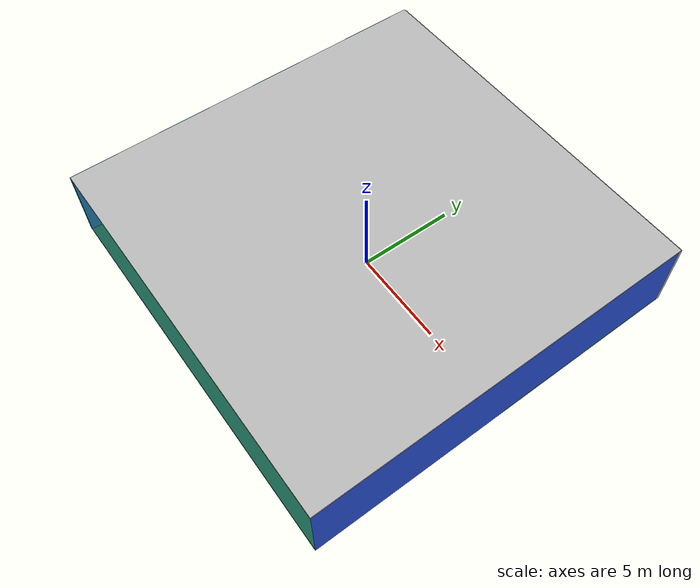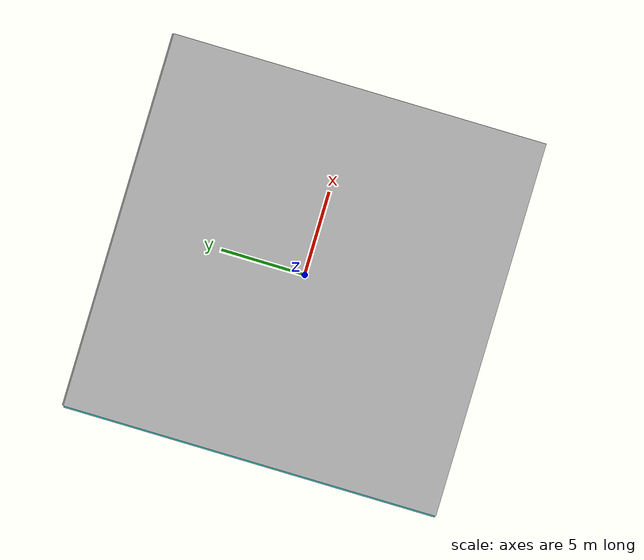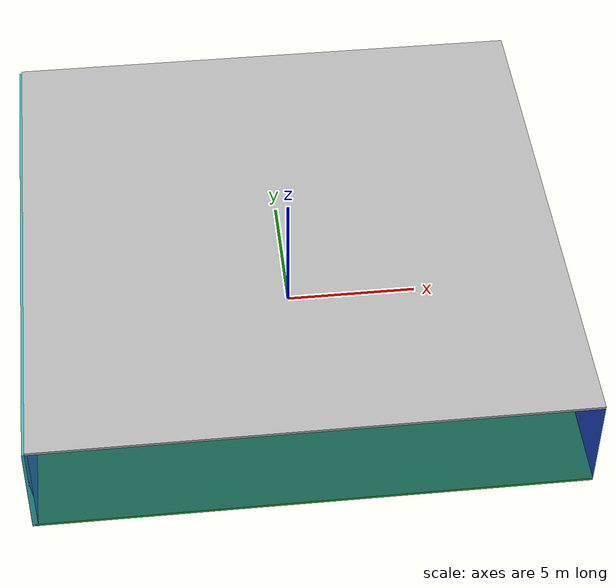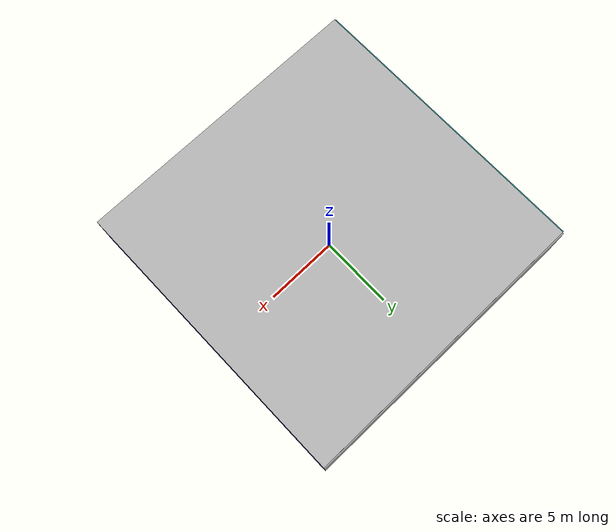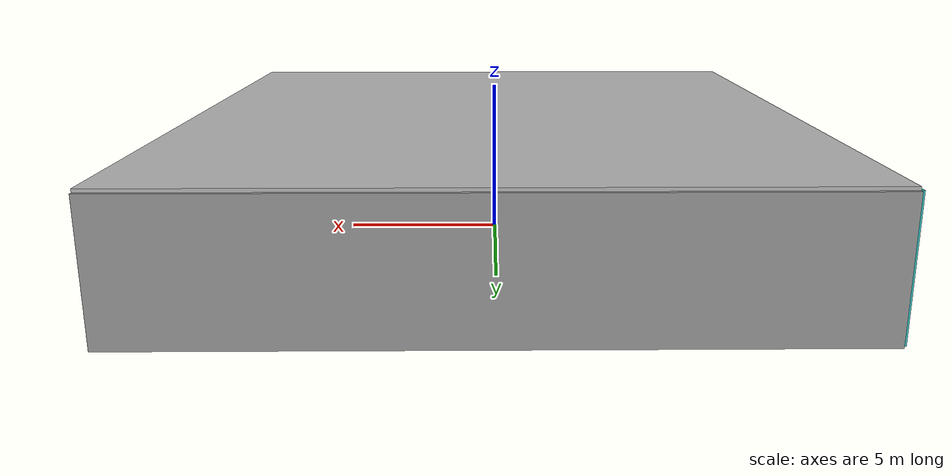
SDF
<sdf version="1.4">
 <world name="default">
  <physics type="ode">
   <max_step_size>0.001</max_step_size>
   <real_time_factor>1</real_time_factor>
   <real_time_update_rate>1000</real_time_update_rate>
   <gravity>0 0 -9.8</gravity>
  </physics>
  <scene><ambient>0.4 0.4 0.4 1</ambient><background>0.7 0.7 0.7 1</background><shadows>1</shadows></scene>
  <model name="Surrounding">
   <static>1</static>
   <link name="Ceiling">
    <collision name="Ceiling_Collision"><geometry><box><size>20 20 0.1</size></box></geometry></collision>
    <visual name="Ceiling_Visual">
     <geometry><box><size>20 20 0.1</size></box></geometry>
     <material>
      <script><uri>file://media/materials/scripts/gazebo.material</uri><name>Gazebo/PioneerBody</name></script>
     </material>
    </visual>
    <pose>0 0 4.05 0 0 0</pose>
   </link>
   <link name="Wall_South">
    <collision name="Wall_South_Collision">
     <geometry><box><size>20 0 4</size></box></geometry>
     <pose>0 0 2 0 -0 0</pose>
    </collision>
    <visual name="Wall_South_Visual">
     <pose>0 0 2 0 -0 0</pose>
     <geometry><box><size>20 0 4</size></box></geometry>
     <material>
      <script><uri>file://media/materials/scripts/gazebo.material</uri><name>Gazebo/BlueTransparent</name></script>
     </material>
    </visual>
    <velocity_decay><linear>0</linear><angular>0</angular></velocity_decay>
    <pose>0 -10 0 0 -0 0</pose>
   </link>
   <link name="Wall_East">
    <collision name="Wall_21_Collision">
     <geometry><box><size>20 0 4</size></box></geometry>
     <pose>0 0 2 0 -0 0</pose>
    </collision>
    <visual name="Wall_21_Visual">
     <pose>0 0 2 0 -0 0</pose>
     <geometry><box><size>20 0 4</size></box></geometry>
     <material>
      <script><uri>file://media/materials/scripts/gazebo.material</uri><name>Gazebo/Blue</name></script>
     </material>
    </visual>
    <velocity_decay><linear>0</linear><angular>0</angular></velocity_decay>
    <pose>10 0 0 0 -0 1.5708</pose>
   </link>
   <link name="Wall_North">
    <collision name="Wall_22_Collision">
     <geometry><box><size>20 0.2 4</size></box></geometry>
     <pose>0 0 2 0 -0 0</pose>
    </collision>
    <visual name="Wall_22_Visual">
     <pose>0 0 2 0 -0 0</pose>
     <geometry><box><size>20 0.2 4</size></box></geometry>
     <material>
      <script><uri>file://media/materials/scripts/gazebo.material</uri><name>Gazebo/Grey</name></script>
     </material>
    </visual>
    <velocity_decay><linear>0</linear><angular>0</angular></velocity_decay>
    <pose>0 10 0 0 -0 0</pose>
   </link>
   <link name="Wall_West">
    <collision name="Wall_23_Collision">
     <geometry><box><size>20 0.2 4</size></box></geometry>
     <pose>0 0 2 0 -0 0</pose>
    </collision>
    <visual name="Wall_23_Visual">
     <pose>0 0 2 0 -0 0</pose>
     <geometry><box><size>20 0.2 4</size></box></geometry>
     <material>
      <script><uri>file://media/materials/scripts/gazebo.material</uri><name>Gazebo/TurquoiseGlow</name></script>
     </material>
    </visual>
    <velocity_decay><linear>0</linear><angular>0</angular></velocity_decay>
    <pose>-10 0 0 0 0 -1.5708</pose>
   </link>
   <link name="Ground_link">
    <collision name="collision">
     <pose>0 0 .05 0 -0 0</pose>
     <geometry><box><size>20 20 0.1</size></box></geometry>
    </collision>
    <visual name="visual">
     <pose>0 0 .05 0 -0 0</pose>
     <geometry><box><size>20 20 0.1</size></box></geometry>
     <material>
      <script><uri>file://media/materials/scripts/gazebo.material</uri><name>Gazebo/GreenGlow</name></script>
     </material>
    </visual>
   </link>
   <static>1</static>
  </model>
  <spherical_coordinates>
   <surface_model>EARTH_WGS84</surface_model>
   <latitude_deg>0</latitude_deg>
   <longitude_deg>0</longitude_deg>
   <elevation>0</elevation>
   <heading_deg>0</heading_deg>
  </spherical_coordinates>
  <light name="lightball_0" type="diffuse">
   <diffuse>0.8 0.8 0.8 1</diffuse>
   <specular>0.2 0.2 0.2 1</specular>
   <attenuation>
    <range>100</range>
    <constant>0.7</constant>
    <linear>0.01</linear>
    <quadratic>0.001</quadratic>
   </attenuation>
   <direction>-0.5 0.1 -0.9</direction>
   <pose>-1.80126362276 6.12781793153 3.80148439126 0 0 0</pose>
  </light>
  <light name="lightball_1" type="diffuse">
   <diffuse>0.8 0.8 0.8 1</diffuse>
   <specular>0.2 0.2 0.2 1</specular>
   <attenuation>
    <range>100</range>
    <constant>0.7</constant>
    <linear>0.01</linear>
    <quadratic>0.001</quadratic>
   </attenuation>
   <direction>-0.5 0.1 -0.9</direction>
   <pose>-9.70107548736 -7.6663008076 2.17718984812 0 0 0</pose>
  </light>
  <light name="lightball_2" type="diffuse">
   <diffuse>0.8 0.8 0.8 1</diffuse>
   <specular>0.2 0.2 0.2 1</specular>
   <attenuation>
    <range>100</range>
    <constant>0.7</constant>
    <linear>0.01</linear>
    <quadratic>0.001</quadratic>
   </attenuation>
   <direction>-0.5 0.1 -0.9</direction>
   <pose>-9.37548849191 1.4731090639 1.83231437451 0 0 0</pose>
  </light>
  <light name="lightball_3" type="diffuse">
   <diffuse>0.8 0.8 0.8 1</diffuse>
   <specular>0.2 0.2 0.2 1</specular>
   <attenuation>
    <range>100</range>
    <constant>0.7</constant>
    <linear>0.01</linear>
    <quadratic>0.001</quadratic>
   </attenuation>
   <direction>-0.5 0.1 -0.9</direction>
   <pose>-3.96742951661 -3.68279463998 1.36268118387 0 0 0</pose>
  </light>
  <light name="lightball_4" type="diffuse">
   <diffuse>0.8 0.8 0.8 1</diffuse>
   <specular>0.2 0.2 0.2 1</specular>
   <attenuation>
    <range>100</range>
    <constant>0.7</constant>
    <linear>0.01</linear>
    <quadratic>0.001</quadratic>
   </attenuation>
   <direction>-0.5 0.1 -0.9</direction>
   <pose>-3.31053198387 -6.84906344334 2.67586714613 0 0 0</pose>
  </light>
  <include><uri>model://cabinet</uri><pose>0.610201026541 -3.99814346168 0 0 0 0.256142512675</pose></include>
  <include><uri>model://cabinet</uri><pose>2.15479305352 -1.59242216644 0 0 0 0.58588871999</pose></include>
 </world>
</sdf>

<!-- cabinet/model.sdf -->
<sdf version="1.5">
  <model name="cabinet">
    <static>true</static>
    <link name="cabinet_bottom_plate">
      <inertial>
        <pose>0 0 -1 0 0 0</pose>
        <inertia>
          <ixx>2.050000</ixx>
          <ixy>0</ixy>
          <ixz>0</ixz>
          <iyy>2.050000</iyy>
          <iyz>0</iyz>
          <izz>2.050000</izz>
        </inertia>
        <mass>25.000000</mass>
      </inertial>
      <collision name="cabinet_bottom_plate_geom">
        <pose>0 0 0.010000 0 0 0</pose>
        <geometry>
          <box>
            <size>0.450000 0.450000 0.020000</size>
          </box>
        </geometry>
      </collision>
      <visual name="cabinet_bottom_plate_geom_visual">
        <pose>0 0 0.010000 0 0 0</pose>
        <geometry>
          <box>
            <size>0.450000 0.450000 0.020000</size>
          </box>
        </geometry>
        <material>
          <script>
            <uri>model://media/materials/scripts/gazebo.material</uri>
            <name>Gazebo/Wood</name>
          </script>
        </material>
      </visual>
      <collision name="cabinet_bottom_plate_geom_cabinet_back_plate">
        <pose>0.235000 0 0.510000 0 0 0</pose>
        <geometry>
          <box>
            <size>0.020000 0.450000 1.020000</size>
          </box>
        </geometry>
      </collision>
      <visual name="cabinet_bottom_plate_geom_cabinet_back_plate_visual">
        <pose>0.235000 0 0.510000 0 0 0</pose>
        <geometry>
          <box>
            <size>0.020000 0.450000 1.020000</size>
          </box>
        </geometry>
        <material>
          <script>
            <uri>model://media/materials/scripts/gazebo.material</uri>
            <name>Gazebo/Wood</name>
          </script>
        </material>
      </visual>
      <collision name="cabinet_bottom_plate_geom_cabinet_left_plate">
        <pose>0 0.235000 0.510000 0 0 0</pose>
        <geometry>
          <box>
            <size>0.450000 0.020000 1.020000</size>
          </box>
        </geometry>
      </collision>
      <visual name="cabinet_bottom_plate_geom_cabinet_left_plate_visual">
        <pose>0 0.235000 0.510000 0 0 0</pose>
        <geometry>
          <box>
            <size>0.450000 0.020000 1.020000</size>
          </box>
        </geometry>
        <material>
          <script>
            <uri>model://media/materials/scripts/gazebo.material</uri>
            <name>Gazebo/Wood</name>
          </script>
        </material>
      </visual>
      <collision name="cabinet_bottom_plate_geom_cabinet_middle_plate">
        <pose>0 0 0.510000 0 0 0</pose>
        <geometry>
          <box>
            <size>0.450000 0.450000 0.020000</size>
          </box>
        </geometry>
      </collision>
      <visual name="cabinet_bottom_plate_geom_cabinet_middle_plate_visual">
        <pose>0 0 0.510000 0 0 0</pose>
        <geometry>
          <box>
            <size>0.450000 0.450000 0.020000</size>
          </box>
        </geometry>
        <material>
          <script>
            <uri>model://media/materials/scripts/gazebo.material</uri>
            <name>Gazebo/Wood</name>
          </script>
        </material>
      </visual>
      <collision name="cabinet_bottom_plate_geom_cabinet_right_plate">
        <pose>0 -0.235000 0.510000 0 0 0</pose>
        <geometry>
          <box>
            <size>0.450000 0.020000 1.020000</size>
          </box>
        </geometry>
      </collision>
      <visual name="cabinet_bottom_plate_geom_cabinet_right_plate_visual">
        <pose>0 -0.235000 0.510000 0 0 0</pose>
        <geometry>
          <box>
            <size>0.450000 0.020000 1.020000</size>
          </box>
        </geometry>
        <material>
          <script>
            <uri>model://media/materials/scripts/gazebo.material</uri>
            <name>Gazebo/Wood</name>
          </script>
        </material>
      </visual>
      <collision name="cabinet_bottom_plate_geom_cabinet_top_plate">
        <pose>0 0 1.010000 0 0 0</pose>
        <geometry>
          <box>
            <size>0.450000 0.450000 0.020000</size>
          </box>
        </geometry>
      </collision>
      <visual name="cabinet_bottom_plate_geom_cabinet_top_plate_visual">
        <pose>0 0 1.010000 0 0 0</pose>
        <geometry>
          <box>
            <size>0.450000 0.450000 0.020000</size>
          </box>
        </geometry>
        <material>
          <script>
            <uri>model://media/materials/scripts/gazebo.material</uri>
            <name>Gazebo/Wood</name>
          </script>
        </material>
      </visual>
    </link>
  </model>
</sdf>
